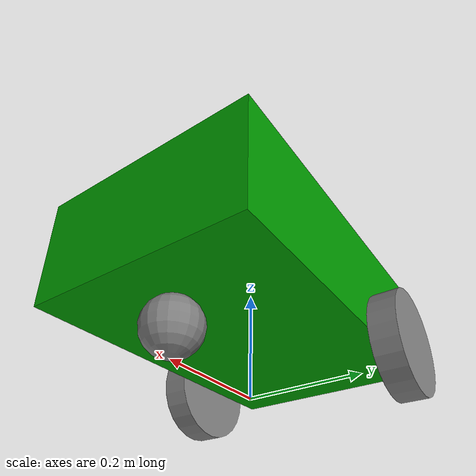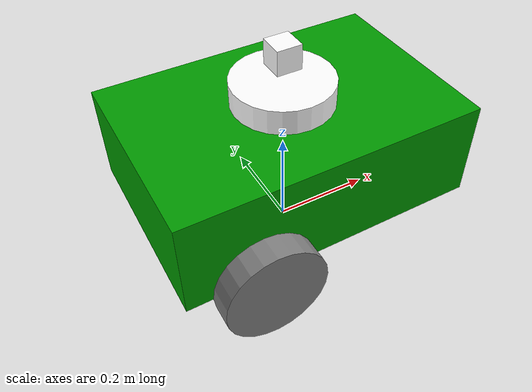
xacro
<?xml version="1.0"?>
<robot name="my_robot" xmlns:xacro="http://www.ros.org/wiki/xacro">

  <!-- Import necessary xacro macros -->
  <xacro:include filename="common_properties.xacro" />
  <xacro:include filename="mobile_base.xacro" />
  <xacro:include filename="mobile_base_gazebo.xacro" />

</robot>

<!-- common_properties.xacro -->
<robot xmlns:xacro="http://www.ros.org/wiki/xacro">

  <!-- Material macros -->
  <xacro:macro name="material_grey" params="">
    <material name="grey">
      <color rgba="0.5 0.5 0.5 1.0"/>
    </material>
  </xacro:macro>

  <xacro:macro name="material_green" params="">
    <material name="green">
      <color rgba="0 0.6 0 1"/>
    </material>
  </xacro:macro>

  <xacro:macro name="material_white" params="">
    <material name="white">
      <color rgba="1 1 1 1"/>
    </material>
  </xacro:macro>

</robot>

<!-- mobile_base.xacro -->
<robot xmlns:xacro="http://www.ros.org/wiki/xacro">
<!-- Include common properties -->
<xacro:include filename="common_properties.xacro"/>
<!-- Call material macros -->
<xacro:material_grey/>
<xacro:material_green/>
<xacro:material_white/>

<!-- Define properties for calculations -->
<xacro:property name="base_length" value="0.6"/>
<xacro:property name="base_width" value="0.4"/>
<xacro:property name="base_height" value="0.2"/>
<xacro:property name="wheel_radius" value="0.1"/>
<xacro:property name="wheel_length" value="0.05"/>
<xacro:property name="caster_radius" value="0.05"/>
<xacro:property name="lidar_radius" value="0.1"/>
<xacro:property name="lidar_length" value="0.05"/>
<xacro:property name="camera_size" value="0.05"/>

<!-- Base footprint -->
<link name="base_footprint"/>

<!-- Base link -->
<link name="base_link">
  <visual>
    <geometry>
      <box size="${base_length} ${base_width} ${base_height}"/>
    </geometry>
    <origin xyz="0 0 ${base_height/2}" rpy="0 0 0"/>
    <material name="green"/>
  </visual>
  <collision>
    <geometry>
      <box size="${base_length} ${base_width} ${base_height}"/>
    </geometry>
    <origin xyz="0 0 ${base_height/2}" rpy="0 0 0"/>
  </collision>
  <inertial>
    <mass value="5.0"/>
    <origin xyz="0 0 ${base_height/2}" rpy="0 0 0"/>
    <inertia ixx="${(5.0/12) * (base_width*base_width + base_height*base_height)}" ixy="0" ixz="0"
             iyy="${(5.0/12) * (base_length*base_length + base_height*base_height)}" iyz="0"
             izz="${(5.0/12) * (base_length*base_length + base_width*base_width)}" />
  </inertial>
</link>

<!-- LiDAR -->
<link name="lidar">
  <visual>
    <geometry>
      <cylinder radius="${lidar_radius}" length="${lidar_length}"/>
    </geometry>
    <origin xyz="0 0 0" rpy="0 0 0"/>
    <material name="white"/>
  </visual>
  <collision>
    <geometry>
      <cylinder radius="${lidar_radius}" length="${lidar_length}"/>
    </geometry>
    <origin xyz="0 0 0" rpy="0 0 0"/>
  </collision>
  <inertial>
    <mass value="0.5"/>
    <origin xyz="0 0 0" rpy="0 0 0"/>
    <inertia ixx="${(0.5/12) * (3*lidar_radius*lidar_radius + lidar_length*lidar_length)}" ixy="0" ixz="0"
             iyy="${(0.5/12) * (3*lidar_radius*lidar_radius + lidar_length*lidar_length)}" iyz="0"
             izz="${(0.5/2) * (lidar_radius*lidar_radius)}" />
  </inertial>
</link>

<!-- Camera -->
<link name="camera_link">
  <visual>
    <geometry>
      <box size="${camera_size} ${camera_size} ${camera_size}"/>
    </geometry>
    <origin xyz="0 0 0" rpy="0 0 0"/>
    <material name="white"/>
  </visual>
  <collision>
    <geometry>
      <box size="${camera_size} ${camera_size} ${camera_size}"/>
    </geometry>
    <origin xyz="0 0 0" rpy="0 0 0"/>
  </collision>
  <inertial>
    <mass value="0.3"/>
    <origin xyz="0 0 0" rpy="0 0 0"/>
    <inertia ixx="${(0.3/12) * (camera_size*camera_size + camera_size*camera_size)}" ixy="0" ixz="0"
             iyy="${(0.3/12) * (camera_size*camera_size + camera_size*camera_size)}" iyz="0"
             izz="${(0.3/12) * (camera_size*camera_size + camera_size*camera_size)}" />
  </inertial>
</link>

<!-- Left Wheel -->
<link name="left_wheel">
  <visual>
    <geometry>
      <cylinder radius="${wheel_radius}" length="${wheel_length}"/>
    </geometry>
    <origin xyz="0 0 0" rpy="1.57 0 0"/>
    <material name="grey"/>
  </visual>
  <collision>
    <geometry>
      <cylinder radius="${wheel_radius}" length="${wheel_length}"/>
    </geometry>
    <origin xyz="0 0 0" rpy="1.57 0 0"/>
  </collision>
  <inertial>
    <mass value="1.0"/>
    <origin xyz="0 0 0" rpy="1.57 0 0"/>
    <inertia ixx="${(1.0/12) * (3*wheel_radius*wheel_radius + wheel_length*wheel_length)}" ixy="0" ixz="0"
             iyy="${(1.0/12) * (3*wheel_radius*wheel_radius + wheel_length*wheel_length)}" iyz="0"
             izz="${(1.0/2) * (wheel_radius*wheel_radius)}" />
  </inertial>
</link>

<!-- Right Wheel -->
<link name="right_wheel">
  <visual>
    <geometry>
      <cylinder radius="${wheel_radius}" length="${wheel_length}"/>
    </geometry>
    <origin xyz="0 0 0" rpy="1.57 0 0"/>
    <material name="grey"/>
  </visual>
  <collision>
    <geometry>
      <cylinder radius="${wheel_radius}" length="${wheel_length}"/>
    </geometry>
    <origin xyz="0 0 0" rpy="1.57 0 0"/>
  </collision>
  <inertial>
    <mass value="1.0"/>
    <origin xyz="0 0 0" rpy="1.57 0 0"/>
    <inertia ixx="${(1.0/12) * (3*wheel_radius*wheel_radius + wheel_length*wheel_length)}" ixy="0" ixz="0"
             iyy="${(1.0/12) * (3*wheel_radius*wheel_radius + wheel_length*wheel_length)}" iyz="0"
             izz="${(1.0/2) * (wheel_radius*wheel_radius)}" />
  </inertial>
</link>

<!-- Caster -->
<link name="caster_wheel">
  <visual>
    <geometry>
      <sphere radius="${caster_radius}"/>
    </geometry>
    <origin xyz="0 0 0" rpy="0 0 0"/>
    <material name="grey"/>
  </visual>
  <collision>
    <geometry>
      <sphere radius="${caster_radius}"/>
    </geometry>
    <origin xyz="0 0 0" rpy="0 0 0"/>
  </collision>
  <inertial>
    <mass value="0.2"/>
    <origin xyz="0 0 0" rpy="0 0 0"/>
    <inertia ixx="${(2.0/5) * 0.2 * caster_radius * caster_radius}" ixy="0" ixz="0"
             iyy="${(2.0/5) * 0.2 * caster_radius * caster_radius}" iyz="0"
             izz="${(2.0/5) * 0.2 * caster_radius * caster_radius}" />
  </inertial>
</link>

<!-- Joints -->
<joint name="base_joint" type="fixed">
  <parent link="base_footprint"/>
  <child link="base_link"/>
  <origin xyz="0 0 0.1" rpy="0 0 0"/>
</joint>

<joint name="base_left_wheel_joint" type="continuous">
  <parent link="base_link"/>
  <child link="left_wheel"/>
  <origin xyz="-0.15 0.225 0" rpy="0 0 0"/>
  <axis xyz="0 1 0"/>
</joint>

<joint name="base_right_wheel_joint" type="continuous">
  <parent link="base_link"/>
  <child link="right_wheel"/>
  <origin xyz="-0.15 -0.225 0" rpy="0 0 0"/>
  <axis xyz="0 1 0"/>
</joint>

<joint name="base_caster_wheel_joint" type="fixed">
  <parent link="base_link"/>
  <child link="caster_wheel"/>
  <origin xyz="0.20 0 -0.05" rpy="0 0 0"/>
</joint>

<joint name="base_lidar_joint" type="fixed">
  <parent link="base_link"/>
  <child link="lidar"/>
  <origin xyz="0 0 0.225" rpy="0 0 0"/>
</joint>

<joint name="base_camera_joint" type="fixed">
  <parent link="base_link"/>
  <child link="camera_link"/>
  <origin xyz="0 0 0.3" rpy="0 0 0"/>
</joint>
</robot>
